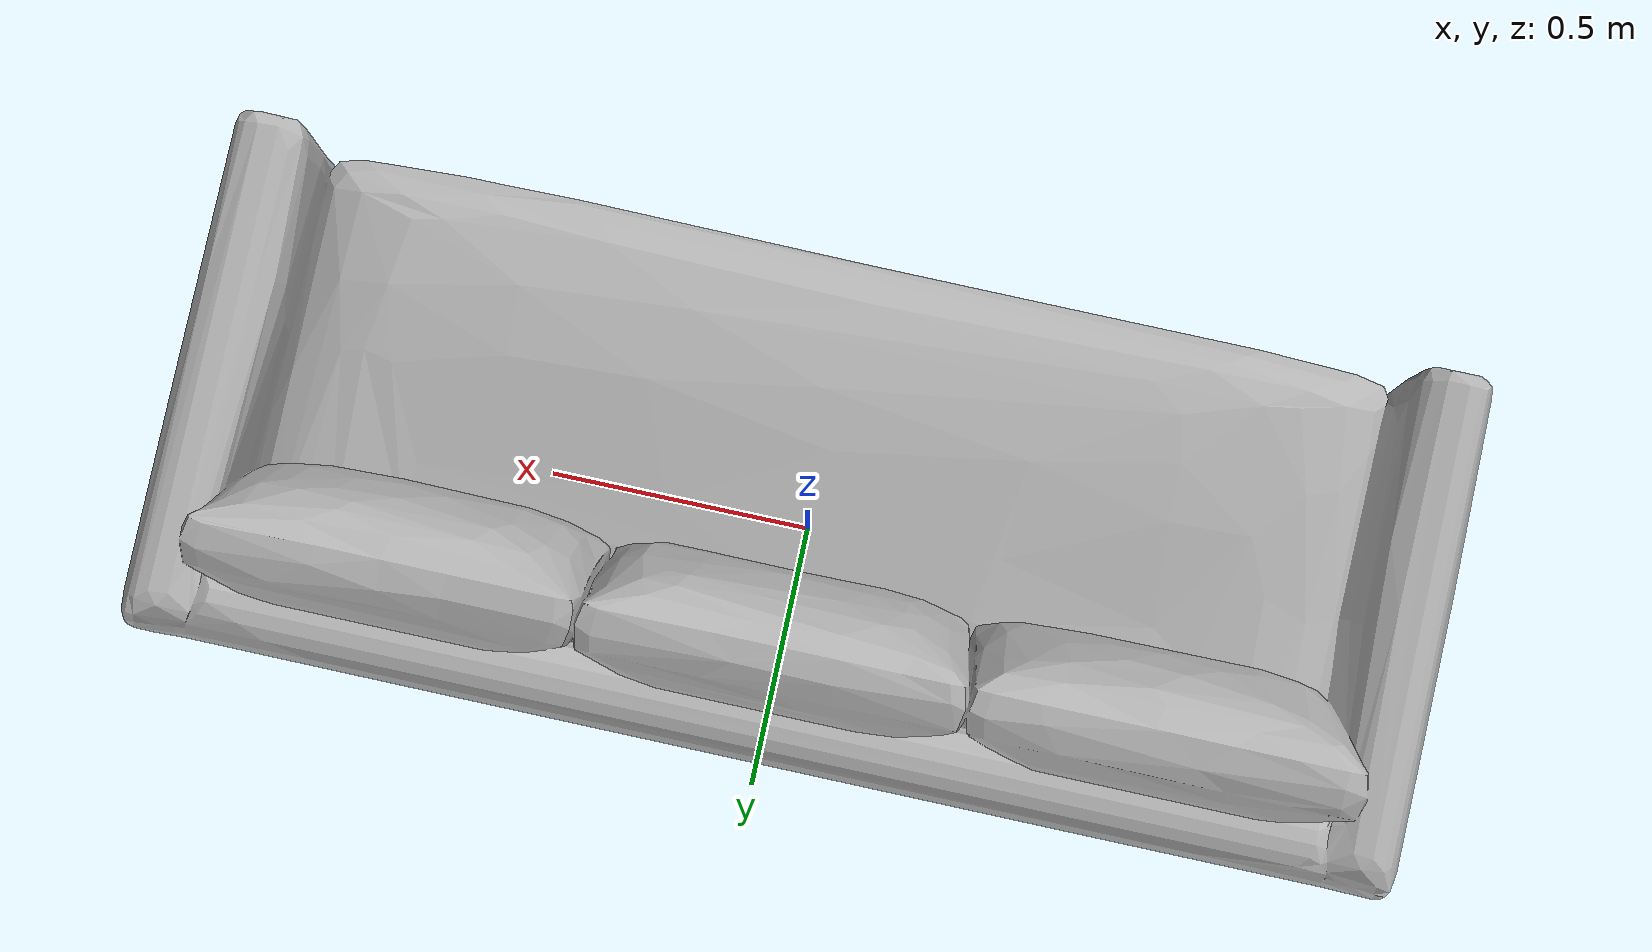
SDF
<sdf version="1.6">
	<model name="Sofas_O253f3cd2a220_lod0">
		<link name="main_link">
			<visual name="visual_RootNode">
				<geometry>
					<mesh>
						<uri>model://Sofas_O253f3cd2a220_lod0/meshes/visual_RootNode.dae</uri>
					</mesh>
				</geometry>
			</visual>
			<collision name="collision_RootNode_lod0_0">
				<geometry>
					<mesh>
						<uri>model://Sofas_O253f3cd2a220_lod0/meshes/collision_RootNode_lod0_0.dae</uri>
					</mesh>
				</geometry>
			</collision>
		</link>
	</model>
</sdf>
